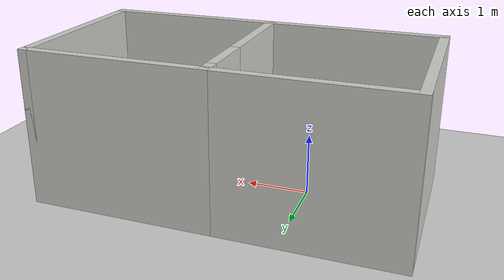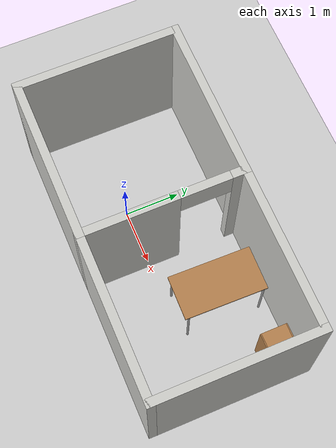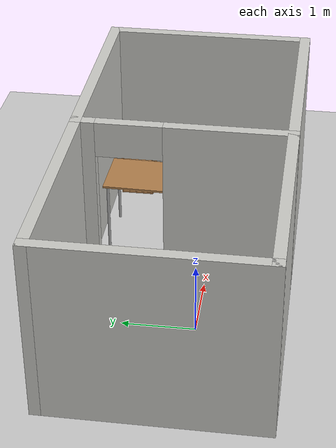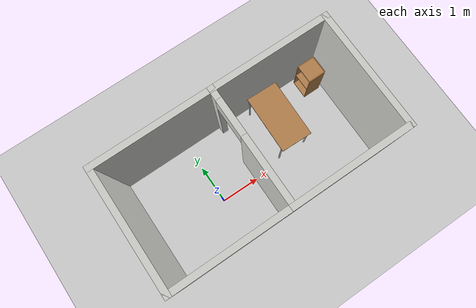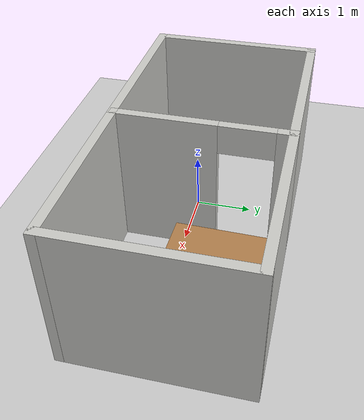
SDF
<sdf version="1.7">
 <world name="default">
  <light name="sun" type="directional">
   <pose>0 0 10 0 -0 0</pose>
   <diffuse>0.8 0.8 0.8 1</diffuse>
   <specular>0.2 0.2 0.2 1</specular>
   <attenuation>
    <range>1000</range>
    <constant>0.9</constant>
    <linear>0.01</linear>
    <quadratic>0.001</quadratic>
   </attenuation>
   <direction>-0.5 0.1 -0.9</direction>
   <spot><inner_angle>0</inner_angle><outer_angle>0</outer_angle><falloff>0</falloff></spot>
  </light>
  <model name="ground_plane">
   <static>1</static>
   <link name="link">
    <collision name="collision">
     <geometry><plane><normal>0 0 1</normal><size>100 100</size></plane></geometry>
     <surface>
      <contact><collide_bitmask>65535</collide_bitmask></contact>
      <friction><ode><mu>100</mu><mu2>50</mu2></ode></friction>
     </surface>
    </collision>
    <visual name="visual">
     <cast_shadows>0</cast_shadows>
     <geometry><plane><normal>0 0 1</normal><size>100 100</size></plane></geometry>
     <material>
      <script><uri>file://media/materials/scripts/gazebo.material</uri><name>Gazebo/Grey</name></script>
     </material>
    </visual>
   </link>
  </model>
  <gravity>0 0 -9.8</gravity>
  <magnetic_field>6e-06 2.3e-05 -4.2e-05</magnetic_field>
  <atmosphere type="adiabatic"/>
  <physics type="ode">
   <max_step_size>0.001</max_step_size>
   <real_time_factor>1</real_time_factor>
   <real_time_update_rate>1000</real_time_update_rate>
  </physics>
  <scene><ambient>0.4 0.4 0.4 1</ambient><background>0.7 0.7 0.7 1</background><shadows>1</shadows></scene>
  <spherical_coordinates>
   <surface_model>EARTH_WGS84</surface_model>
   <latitude_deg>0</latitude_deg>
   <longitude_deg>0</longitude_deg>
   <elevation>0</elevation>
   <heading_deg>0</heading_deg>
  </spherical_coordinates>
  <model name="world">
   <pose>1.5271 0.296608 0 0 -0 0</pose>
   <link name="Wall_0">
    <collision name="Wall_0_Collision">
     <geometry><box><size>3 0.15 2.5</size></box></geometry>
     <pose>0 0 1.25 0 -0 0</pose>
    </collision>
    <visual name="Wall_0_Visual">
     <pose>0 0 1.25 0 -0 0</pose>
     <geometry><box><size>3 0.15 2.5</size></box></geometry>
     <material>
      <script><uri>file://media/materials/scripts/gazebo.material</uri><name>Gazebo/CeilingTiled</name></script>
      <ambient>1 1 1 1</ambient>
     </material>
     <meta><layer>0</layer></meta>
    </visual>
    <pose>0.926949 1.425 0 0 -0 0</pose>
   </link>
   <link name="Wall_1">
    <collision name="Wall_1_Collision">
     <geometry><box><size>3 0.15 2.5</size></box></geometry>
     <pose>0 0 1.25 0 -0 0</pose>
    </collision>
    <visual name="Wall_1_Visual">
     <pose>0 0 1.25 0 -0 0</pose>
     <geometry><box><size>3 0.15 2.5</size></box></geometry>
     <material>
      <script><uri>file://media/materials/scripts/gazebo.material</uri><name>Gazebo/CeilingTiled</name></script>
      <ambient>1 1 1 1</ambient>
     </material>
     <meta><layer>0</layer></meta>
    </visual>
    <pose>2.35195 0 0 0 -0 -1.5708</pose>
   </link>
   <link name="Wall_2">
    <collision name="Wall_2_Collision">
     <geometry><box><size>3 0.15 2.5</size></box></geometry>
     <pose>0 0 1.25 0 -0 0</pose>
    </collision>
    <visual name="Wall_2_Visual">
     <pose>0 0 1.25 0 -0 0</pose>
     <geometry><box><size>3 0.15 2.5</size></box></geometry>
     <material>
      <script><uri>file://media/materials/scripts/gazebo.material</uri><name>Gazebo/CeilingTiled</name></script>
      <ambient>1 1 1 1</ambient>
     </material>
     <meta><layer>0</layer></meta>
    </visual>
    <pose>0.926949 -1.425 0 0 -0 3.14159</pose>
   </link>
   <link name="Wall_3">
    <pose>-0.498052 0 0 0 -0 1.5708</pose>
    <visual name="Wall_3_Visual_0">
     <pose>-0.614488 0 1.25 0 -0 0</pose>
     <geometry><box><size>1.77103 0.15 2.5</size></box></geometry>
     <material>
      <script><uri>file://media/materials/scripts/gazebo.material</uri><name>Gazebo/CeilingTiled</name></script>
      <ambient>1 1 1 1</ambient>
     </material>
     <meta><layer>0</layer></meta>
    </visual>
    <collision name="Wall_3_Collision_0">
     <geometry><box><size>1.77103 0.15 2.5</size></box></geometry>
     <pose>-0.614488 0 1.25 0 -0 0</pose>
    </collision>
    <visual name="Wall_3_Visual_1">
     <pose>1.33551 0 1.25 0 -0 0</pose>
     <geometry><box><size>0.328975 0.15 2.5</size></box></geometry>
     <material>
      <script><uri>file://media/materials/scripts/gazebo.material</uri><name>Gazebo/CeilingTiled</name></script>
      <ambient>1 1 1 1</ambient>
     </material>
     <meta><layer>0</layer></meta>
    </visual>
    <collision name="Wall_3_Collision_1">
     <geometry><box><size>0.328975 0.15 2.5</size></box></geometry>
     <pose>1.33551 0 1.25 0 -0 0</pose>
    </collision>
    <visual name="Wall_3_Visual_2">
     <pose>0.721025 0 2.25 0 -0 0</pose>
     <geometry><box><size>0.9 0.15 0.5</size></box></geometry>
     <material>
      <script><uri>file://media/materials/scripts/gazebo.material</uri><name>Gazebo/CeilingTiled</name></script>
      <ambient>1 1 1 1</ambient>
     </material>
     <meta><layer>0</layer></meta>
    </visual>
    <collision name="Wall_3_Collision_2">
     <geometry><box><size>0.9 0.15 0.5</size></box></geometry>
     <pose>0.721025 0 2.25 0 -0 0</pose>
    </collision>
   </link>
   <link name="Wall_5">
    <collision name="Wall_5_Collision">
     <geometry><box><size>3 0.15 2.5</size></box></geometry>
     <pose>0 0 1.25 0 -0 0</pose>
    </collision>
    <visual name="Wall_5_Visual">
     <pose>0 0 1.25 0 -0 0</pose>
     <geometry><box><size>3 0.15 2.5</size></box></geometry>
     <material>
      <script><uri>file://media/materials/scripts/gazebo.material</uri><name>Gazebo/CeilingTiled</name></script>
      <ambient>1 1 1 1</ambient>
     </material>
     <meta><layer>0</layer></meta>
    </visual>
    <pose>-1.92305 1.425 0 0 -0 3.14159</pose>
   </link>
   <link name="Wall_6">
    <collision name="Wall_6_Collision">
     <geometry><box><size>3 0.15 2.5</size></box></geometry>
     <pose>0 0 1.25 0 -0 0</pose>
    </collision>
    <visual name="Wall_6_Visual">
     <pose>0 0 1.25 0 -0 0</pose>
     <geometry><box><size>3 0.15 2.5</size></box></geometry>
     <material>
      <script><uri>file://media/materials/scripts/gazebo.material</uri><name>Gazebo/CeilingTiled</name></script>
      <ambient>1 1 1 1</ambient>
     </material>
     <meta><layer>0</layer></meta>
    </visual>
    <pose>-3.34805 0 0 0 -0 -1.5708</pose>
   </link>
   <link name="Wall_7">
    <collision name="Wall_7_Collision">
     <geometry><box><size>3 0.15 2.5</size></box></geometry>
     <pose>0 0 1.25 0 -0 0</pose>
    </collision>
    <visual name="Wall_7_Visual">
     <pose>0 0 1.25 0 -0 0</pose>
     <geometry><box><size>3 0.15 2.5</size></box></geometry>
     <material>
      <script><uri>file://media/materials/scripts/gazebo.material</uri><name>Gazebo/CeilingTiled</name></script>
      <ambient>1 1 1 1</ambient>
     </material>
     <meta><layer>0</layer></meta>
    </visual>
    <pose>-1.92305 -1.425 0 0 -0 0</pose>
   </link>
   <static>1</static>
  </model>
  <model name="cabinet">
   <static>1</static>
   <link name="cabinet_bottom_plate">
    <inertial>
     <pose>0 0 -1 0 -0 0</pose>
     <inertia><ixx>2.05</ixx><ixy>0</ixy><ixz>0</ixz><iyy>2.05</iyy><iyz>0</iyz><izz>2.05</izz></inertia>
     <mass>25</mass>
    </inertial>
    <collision name="cabinet_bottom_plate_geom">
     <pose>0 0 0.01 0 -0 0</pose>
     <geometry><box><size>0.45 0.45 0.02</size></box></geometry>
    </collision>
    <visual name="cabinet_bottom_plate_geom_visual">
     <pose>0 0 0.01 0 -0 0</pose>
     <geometry><box><size>0.45 0.45 0.02</size></box></geometry>
     <material>
      <script><uri>file://media/materials/scripts/gazebo.material</uri><name>Gazebo/Wood</name></script>
     </material>
    </visual>
    <collision name="cabinet_bottom_plate_geom_cabinet_back_plate">
     <pose>0.235 0 0.51 0 -0 0</pose>
     <geometry><box><size>0.02 0.45 1.02</size></box></geometry>
    </collision>
    <visual name="cabinet_bottom_plate_geom_cabinet_back_plate_visual">
     <pose>0.235 0 0.51 0 -0 0</pose>
     <geometry><box><size>0.02 0.45 1.02</size></box></geometry>
     <material>
      <script><uri>file://media/materials/scripts/gazebo.material</uri><name>Gazebo/Wood</name></script>
     </material>
    </visual>
    <collision name="cabinet_bottom_plate_geom_cabinet_left_plate">
     <pose>0 0.235 0.51 0 -0 0</pose>
     <geometry><box><size>0.45 0.02 1.02</size></box></geometry>
    </collision>
    <visual name="cabinet_bottom_plate_geom_cabinet_left_plate_visual">
     <pose>0 0.235 0.51 0 -0 0</pose>
     <geometry><box><size>0.45 0.02 1.02</size></box></geometry>
     <material>
      <script><uri>file://media/materials/scripts/gazebo.material</uri><name>Gazebo/Wood</name></script>
     </material>
    </visual>
    <collision name="cabinet_bottom_plate_geom_cabinet_middle_plate">
     <pose>0 0 0.51 0 -0 0</pose>
     <geometry><box><size>0.45 0.45 0.02</size></box></geometry>
    </collision>
    <visual name="cabinet_bottom_plate_geom_cabinet_middle_plate_visual">
     <pose>0 0 0.51 0 -0 0</pose>
     <geometry><box><size>0.45 0.45 0.02</size></box></geometry>
     <material>
      <script><uri>file://media/materials/scripts/gazebo.material</uri><name>Gazebo/Wood</name></script>
     </material>
    </visual>
    <collision name="cabinet_bottom_plate_geom_cabinet_right_plate">
     <pose>0 -0.235 0.51 0 -0 0</pose>
     <geometry><box><size>0.45 0.02 1.02</size></box></geometry>
    </collision>
    <visual name="cabinet_bottom_plate_geom_cabinet_right_plate_visual">
     <pose>0 -0.235 0.51 0 -0 0</pose>
     <geometry><box><size>0.45 0.02 1.02</size></box></geometry>
     <material>
      <script><uri>file://media/materials/scripts/gazebo.material</uri><name>Gazebo/Wood</name></script>
     </material>
    </visual>
    <collision name="cabinet_bottom_plate_geom_cabinet_top_plate">
     <pose>0 0 1.01 0 -0 0</pose>
     <geometry><box><size>0.45 0.45 0.02</size></box></geometry>
    </collision>
    <visual name="cabinet_bottom_plate_geom_cabinet_top_plate_visual">
     <pose>0 0 1.01 0 -0 0</pose>
     <geometry><box><size>0.45 0.45 0.02</size></box></geometry>
     <material>
      <script><uri>file://media/materials/scripts/gazebo.material</uri><name>Gazebo/Wood</name></script>
     </material>
    </visual>
   </link>
   <pose>3.48017 1.32855 0 0 -0 0</pose>
  </model>
  <model name="table">
   <static>1</static>
   <link name="link">
    <collision name="surface">
     <pose>0 0 1 0 -0 0</pose>
     <geometry><box><size>1.5 0.8 0.03</size></box></geometry>
     <surface><friction><ode><mu>0.6</mu><mu2>0.6</mu2></ode></friction></surface>
    </collision>
    <visual name="visual1">
     <pose>0 0 1 0 -0 0</pose>
     <geometry><box><size>1.5 0.8 0.03</size></box></geometry>
     <material>
      <script><uri>file://media/materials/scripts/gazebo.material</uri><name>Gazebo/Wood</name></script>
     </material>
    </visual>
    <collision name="front_left_leg">
     <pose>0.68 0.38 0.5 0 -0 0</pose>
     <geometry><cylinder><radius>0.02</radius><length>1</length></cylinder></geometry>
    </collision>
    <visual name="front_left_leg">
     <pose>0.68 0.38 0.5 0 -0 0</pose>
     <geometry><cylinder><radius>0.02</radius><length>1</length></cylinder></geometry>
     <material>
      <script><uri>file://media/materials/scripts/gazebo.material</uri><name>Gazebo/Grey</name></script>
     </material>
    </visual>
    <collision name="front_right_leg">
     <pose>0.68 -0.38 0.5 0 -0 0</pose>
     <geometry><cylinder><radius>0.02</radius><length>1</length></cylinder></geometry>
    </collision>
    <visual name="front_right_leg">
     <pose>0.68 -0.38 0.5 0 -0 0</pose>
     <geometry><cylinder><radius>0.02</radius><length>1</length></cylinder></geometry>
     <material>
      <script><uri>file://media/materials/scripts/gazebo.material</uri><name>Gazebo/Grey</name></script>
     </material>
    </visual>
    <collision name="back_right_leg">
     <pose>-0.68 -0.38 0.5 0 -0 0</pose>
     <geometry><cylinder><radius>0.02</radius><length>1</length></cylinder></geometry>
    </collision>
    <visual name="back_right_leg">
     <pose>-0.68 -0.38 0.5 0 -0 0</pose>
     <geometry><cylinder><radius>0.02</radius><length>1</length></cylinder></geometry>
     <material>
      <script><uri>file://media/materials/scripts/gazebo.material</uri><name>Gazebo/Grey</name></script>
     </material>
    </visual>
    <collision name="back_left_leg">
     <pose>-0.68 0.38 0.5 0 -0 0</pose>
     <geometry><cylinder><radius>0.02</radius><length>1</length></cylinder></geometry>
    </collision>
    <visual name="back_left_leg">
     <pose>-0.68 0.38 0.5 0 -0 0</pose>
     <geometry><cylinder><radius>0.02</radius><length>1</length></cylinder></geometry>
     <material>
      <script><uri>file://media/materials/scripts/gazebo.material</uri><name>Gazebo/Grey</name></script>
     </material>
    </visual>
   </link>
   <pose>2.16424 0.808335 0 0 -0 1.55</pose>
  </model>
 </world>
</sdf>
